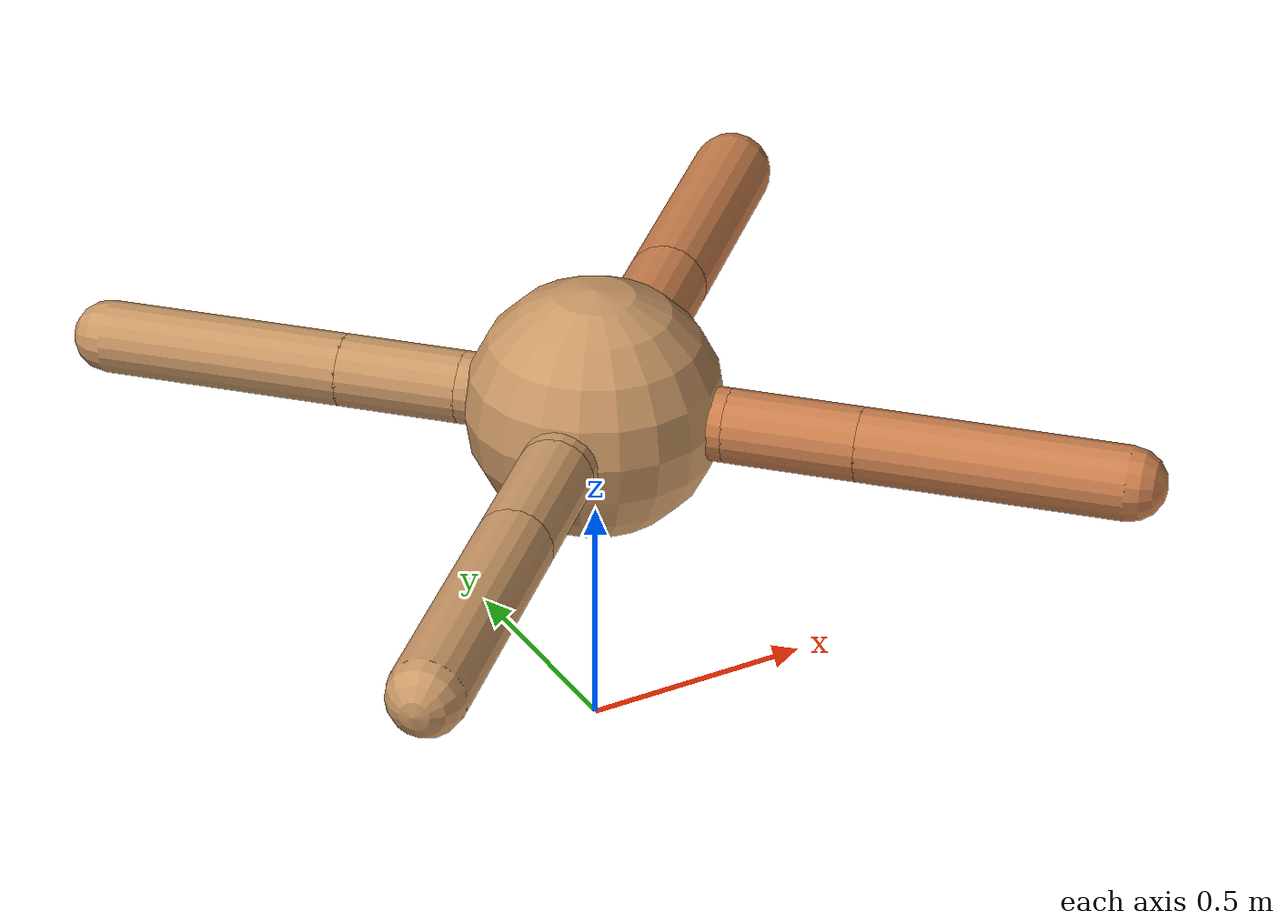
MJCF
<?xml version="1.0" ?>
<mujoco model="ant">

	<compiler angle="degree" coordinate="local" inertiafromgeom="true"/>

	<option integrator="RK4" timestep="0.01"/>

	<custom>

		<numeric data="0.0 0.0 0.55 1.0 0.0 0.0 0.0 0.0 1.0 0.0 -1.0 0.0 -1.0 0.0 1.0" name="init_qpos"/>

	</custom>

	<default>

		<joint armature="1" damping="1" limited="true"/>

		<geom conaffinity="0" condim="3" density="5.0" friction="1.5 0.1 0.1" margin="0.01" rgba="0.8 0.6 0.4 1"/>

	</default>

	<worldbody>

		<body name="torso" pos="0 0 0.75">

			<geom name="torso_geom" pos="0 0 0" size="0.27054360490938384" type="sphere"/>

			<!--joint armature="0" damping="0" limited="false" margin="0.01" name="root" pos="0 0 0" type="free"/-->

			<body name="front_left_leg" pos="0 0 0">

				<geom fromto="0 0 0 0.2 0.2 0" name="aux_1_geom" size="0.08736737772455806" type="capsule" rgba=".8 .5 .3 1"/>

				<body name="aux_1" pos="0.2 0.2 0">

					<joint axis="0 0 1" name="hip_1" pos="0.0 0.0 0.0" range="-40 40" type="hinge"/>

					<geom fromto="0 0 0 0.19026690567990437 0.19026690567990437 0" name="left_leg_geom" size="0.08736737772455806" type="capsule" rgba=".8 .5 .3 1"/>

					<body pos="0.19026690567990437 0.19026690567990437 0" name="front_left_foot">

						<joint axis="-1 1 0" name="ankle_1" pos="0.0 0.0 0.0" range="30 100" type="hinge"/>

						<geom fromto="0 0 0 0.38053381135980874 0.38053381135980874 0" name="left_ankle_geom" size="0.08736737772455806" type="capsule" rgba=".8 .5 .3 1"/>

					</body>

				</body>

			</body>

			<body name="front_right_leg" pos="0 0 0">

				<geom fromto="0 0 0 -0.2 0.2 0" name="aux_2_geom" size="0.07624332872217895" type="capsule"/>

				<body name="aux_2" pos="-0.2 0.2 0">

					<joint axis="0 0 1" name="hip_2" pos="0.0 0.0 0.0" range="-40 40" type="hinge"/>

					<geom fromto="0 0 0 -0.1831905103010906 0.1831905103010906 0" name="right_leg_geom" size="0.07624332872217895" type="capsule"/>

					<body pos="-0.1831905103010906 0.1831905103010906 0" name="front_right_foot">

						<joint axis="1 1 0" name="ankle_2" pos="0.0 0.0 0.0" range="-100 -30" type="hinge"/>

						<geom fromto="0 0 0 -0.3663810206021812 0.3663810206021812 0" name="right_ankle_geom" size="0.07624332872217895" type="capsule"/>

					</body>

				</body>

			</body>

			<body name="left_back_leg" pos="0 0 0">

				<geom fromto="0 0 0 -0.2 -0.2 0" name="aux_3_geom" size="0.07984531547961307" type="capsule"/>

				<body name="aux_3" pos="-0.2 -0.2 0">

					<joint axis="0 0 1" name="hip_3" pos="0.0 0.0 0.0" range="-40 40" type="hinge"/>

					<geom fromto="0 0 0 -0.1969762241608738 -0.1969762241608738 0" name="back_leg_geom" size="0.07984531547961307" type="capsule"/>

					<body pos="-0.1969762241608738 -0.1969762241608738 0" name="left_back_foot">

						<joint axis="-1 1 0" name="ankle_3" pos="0.0 0.0 0.0" range="-100 -30" type="hinge"/>

						<geom fromto="0 0 0 -0.3939524483217476 -0.3939524483217476 0" name="third_ankle_geom" size="0.07984531547961307" type="capsule"/>

					</body>

				</body>

			</body>

			<body name="right_back_leg" pos="0 0 0">

				<geom fromto="0 0 0 0.2 -0.2 0" name="aux_4_geom" size="0.07715603190589132" type="capsule" rgba=".8 .5 .3 1"/>

				<body name="aux_4" pos="0.2 -0.2 0">

					<joint axis="0 0 1" name="hip_4" pos="0.0 0.0 0.0" range="-40 40" type="hinge"/>

					<geom fromto="0 0 0 0.19532810478847384 -0.19532810478847384 0" name="rightback_leg_geom" size="0.07715603190589132" type="capsule" rgba=".8 .5 .3 1"/>

					<body pos="0.19532810478847384 -0.19532810478847384 0" name="right_back_foot">

						<joint axis="1 1 0" name="ankle_4" pos="0.0 0.0 0.0" range="30 100" type="hinge"/>

						<geom fromto="0 0 0 0.3906562095769477 -0.3906562095769477 0" name="fourth_ankle_geom" size="0.07715603190589132" type="capsule" rgba=".8 .5 .3 1"/>

					</body>

				</body>

			</body>

		</body>

	</worldbody>

	<actuator>

		<motor ctrllimited="true" ctrlrange="-1.0 1.0" joint="hip_4" gear="150"/>

		<motor ctrllimited="true" ctrlrange="-1.0 1.0" joint="ankle_4" gear="150"/>

		<motor ctrllimited="true" ctrlrange="-1.0 1.0" joint="hip_1" gear="150"/>

		<motor ctrllimited="true" ctrlrange="-1.0 1.0" joint="ankle_1" gear="150"/>

		<motor ctrllimited="true" ctrlrange="-1.0 1.0" joint="hip_2" gear="150"/>

		<motor ctrllimited="true" ctrlrange="-1.0 1.0" joint="ankle_2" gear="150"/>

		<motor ctrllimited="true" ctrlrange="-1.0 1.0" joint="hip_3" gear="150"/>

		<motor ctrllimited="true" ctrlrange="-1.0 1.0" joint="ankle_3" gear="150"/>

	</actuator>

</mujoco>
